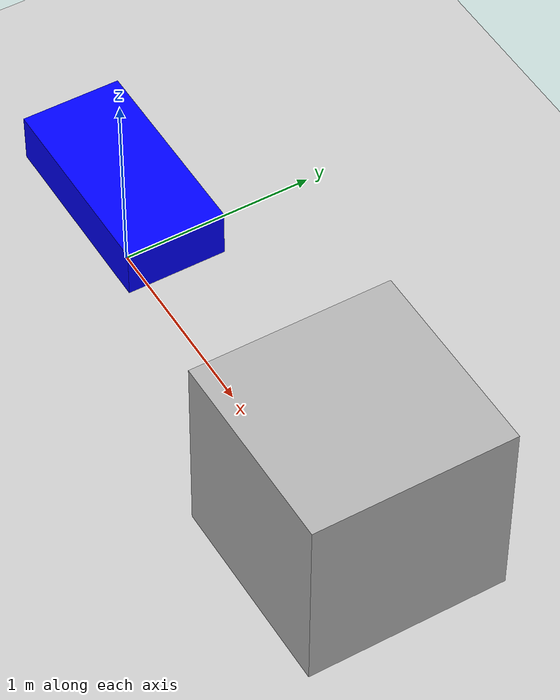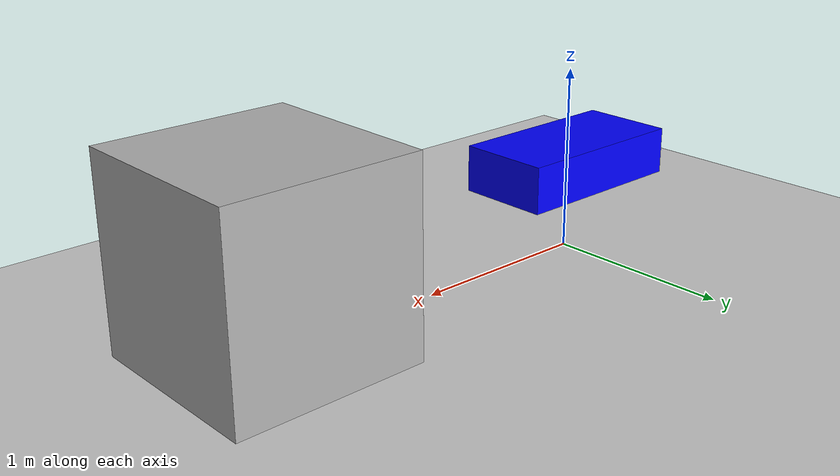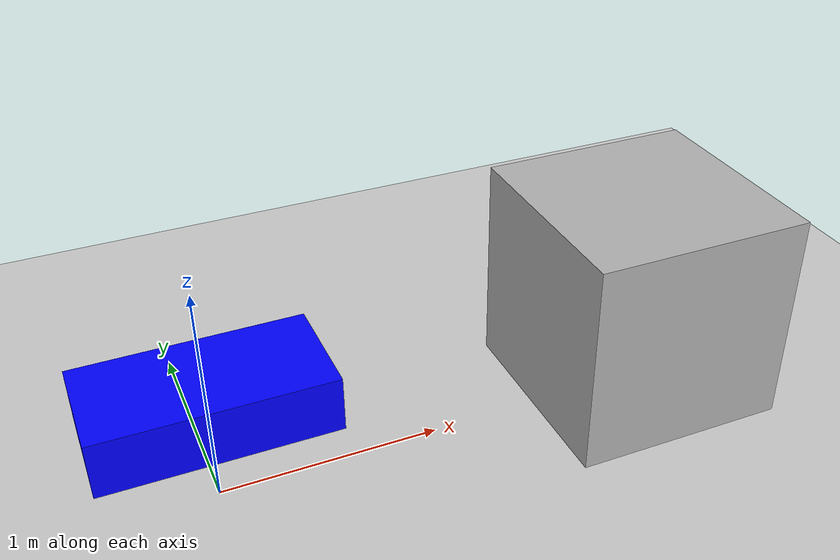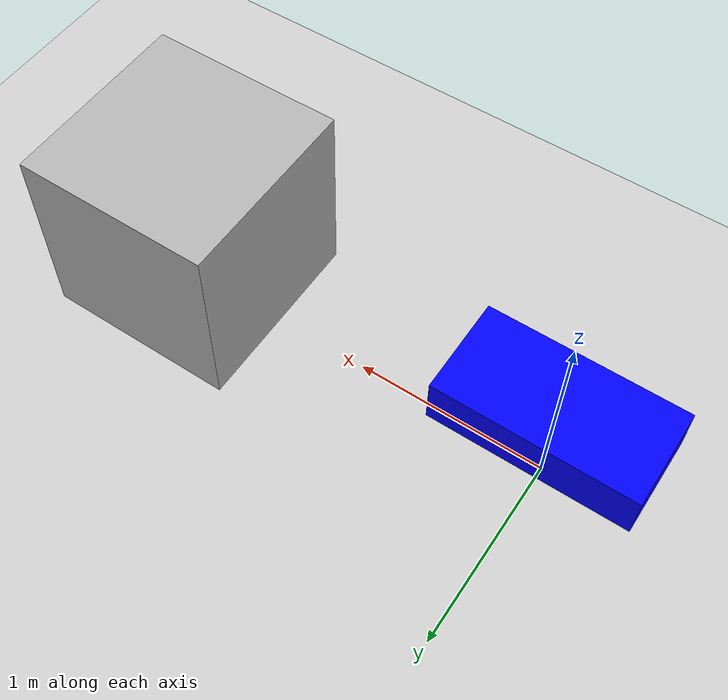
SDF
<?xml version="1.0" ?>
<sdf version="1.6">
  <world name="simple_world">
    <!-- Include the sun -->
    <include>
      <uri>model://sun</uri>
    </include>

    <!-- Include the ground plane -->
    <include>
      <uri>model://ground_plane</uri>
    </include>

    <!-- Simple box obstacle -->
    <model name="box_obstacle">
      <pose>2 0 0.5 0 0 0</pose>
      <link name="link">
        <inertial>
          <mass>1.0</mass>
          <inertia>
            <ixx>0.083</ixx>
            <ixy>0.0</ixy>
            <ixz>0.0</ixz>
            <iyy>0.083</iyy>
            <iyz>0.0</iyz>
            <izz>0.083</izz>
          </inertia>
        </inertial>
        <collision name="collision">
          <geometry>
            <box>
              <size>1 1 1</size>
            </box>
          </geometry>
        </collision>
        <visual name="visual">
          <geometry>
            <box>
              <size>1 1 1</size>
            </box>
          </geometry>
          <material>
            <ambient>0.5 0.5 0.5 1</ambient>
            <diffuse>0.7 0.7 0.7 1</diffuse>
            <specular>0.01 0.01 0.01 1</specular>
          </material>
        </visual>
      </link>
    </model>

    <!-- Simple robot model -->
    <model name="simple_robot">
      <pose>0 0 0.5 0 0 0</pose>
      <link name="chassis">
        <inertial>
          <mass>5.0</mass>
          <inertia>
            <ixx>0.416</ixx>
            <ixy>0.0</ixy>
            <ixz>0.0</ixz>
            <iyy>0.416</iyy>
            <iyz>0.0</iyz>
            <izz>0.833</izz>
          </inertia>
        </inertial>
        <collision name="collision">
          <geometry>
            <box>
              <size>1 0.5 0.25</size>
            </box>
          </geometry>
        </collision>
        <visual name="visual">
          <geometry>
            <box>
              <size>1 0.5 0.25</size>
            </box>
          </geometry>
          <material>
            <ambient>0.0 0.0 1.0 1</ambient>
            <diffuse>0.0 0.0 1.0 1</diffuse>
            <specular>0.01 0.01 0.01 1</specular>
          </material>
        </visual>
      </link>
    </model>
  </world>
</sdf>
